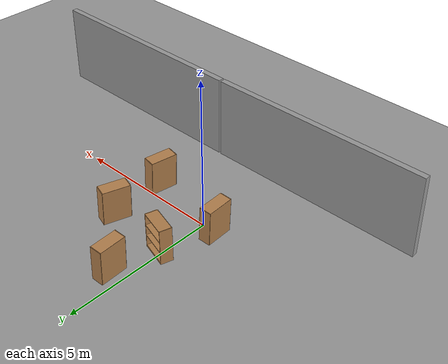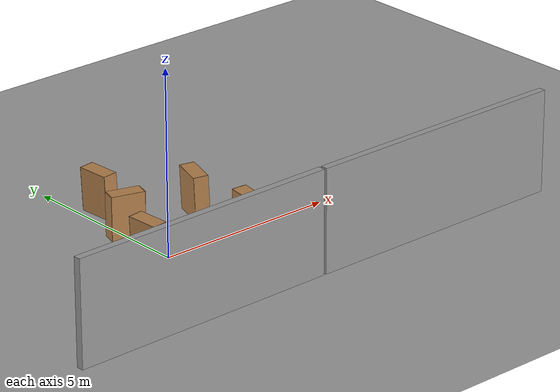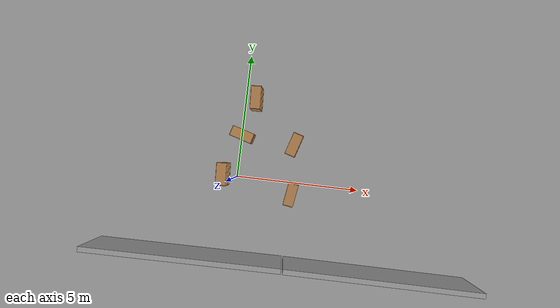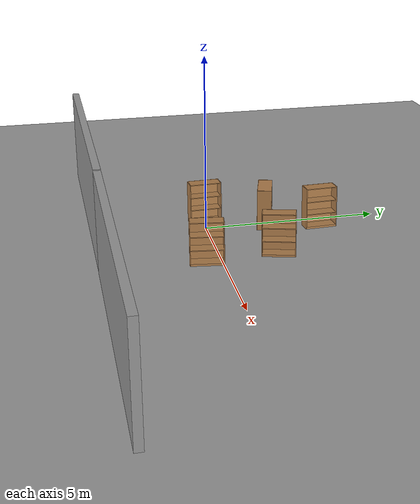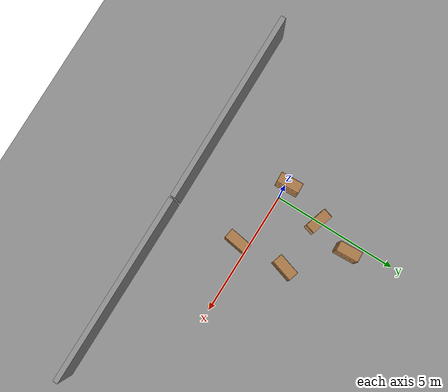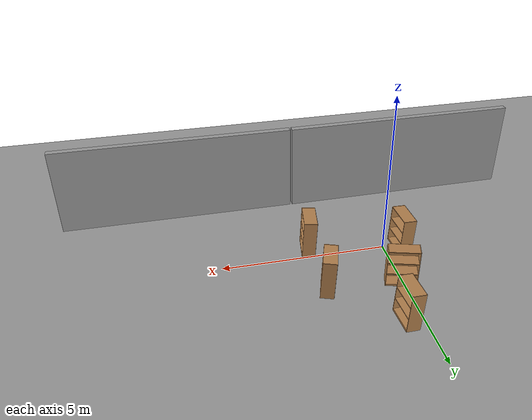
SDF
<sdf version="1.6">
 <world name="default">
  <light name="sun" type="directional">
   <cast_shadows>0</cast_shadows>
   <pose>0 0 10 0 -0 0</pose>
   <diffuse>0.8 0.8 0.8 1</diffuse>
   <specular>0.2 0.2 0.2 1</specular>
   <attenuation>
    <range>1000</range>
    <constant>0.9</constant>
    <linear>0.01</linear>
    <quadratic>0.001</quadratic>
   </attenuation>
   <direction>0.5 0.1 -0.9</direction>
  </light>
  <scene><ambient>0.4 0.4 0.4 1</ambient><background>0.7 0.7 0.7 1</background><shadows>0</shadows></scene>
  <physics name="default_physics" default="0" type="ode">
   <max_step_size>0.01</max_step_size>
   <real_time_factor>1</real_time_factor>
   <real_time_update_rate>100</real_time_update_rate>
  </physics>
  <model name="bookshelf">
   <static>1</static>
   <link name="link">
    <inertial><mass>1</mass></inertial>
    <collision name="back">
     <pose>0 0.005 0.6 0 -0 0</pose>
     <geometry><box><size>0.9 0.01 1.2</size></box></geometry>
    </collision>
    <visual name="visual1">
     <pose>0 0.005 0.6 0 -0 0</pose>
     <geometry><box><size>0.9 0.01 1.2</size></box></geometry>
     <material>
      <script><uri>file://media/materials/scripts/gazebo.material</uri><name>Gazebo/Wood</name></script>
     </material>
    </visual>
    <collision name="left_side">
     <pose>0.45 -0.195 0.6 0 -0 0</pose>
     <geometry><box><size>0.02 0.4 1.2</size></box></geometry>
    </collision>
    <visual name="visual2">
     <pose>0.45 -0.195 0.6 0 -0 0</pose>
     <geometry><box><size>0.02 0.4 1.2</size></box></geometry>
     <material>
      <script><uri>file://media/materials/scripts/gazebo.material</uri><name>Gazebo/Wood</name></script>
     </material>
    </visual>
    <collision name="right_side">
     <pose>-0.45 -0.195 0.6 0 -0 0</pose>
     <geometry><box><size>0.02 0.4 1.2</size></box></geometry>
    </collision>
    <visual name="visual3">
     <pose>-0.45 -0.195 0.6 0 -0 0</pose>
     <geometry><box><size>0.02 0.4 1.2</size></box></geometry>
     <material>
      <script><uri>file://media/materials/scripts/gazebo.material</uri><name>Gazebo/Wood</name></script>
     </material>
    </visual>
    <collision name="bottom">
     <pose>0 -0.195 0.03 0 -0 0</pose>
     <geometry><box><size>0.88 0.4 0.06</size></box></geometry>
    </collision>
    <visual name="visual4">
     <pose>0 -0.195 0.03 0 -0 0</pose>
     <geometry><box><size>0.88 0.4 0.06</size></box></geometry>
     <material>
      <script><uri>file://media/materials/scripts/gazebo.material</uri><name>Gazebo/Wood</name></script>
     </material>
    </visual>
    <collision name="top">
     <pose>0 -0.195 1.19 0 -0 0</pose>
     <geometry><box><size>0.88 0.4 0.02</size></box></geometry>
    </collision>
    <visual name="visual5">
     <pose>0 -0.195 1.19 0 -0 0</pose>
     <geometry><box><size>0.88 0.4 0.02</size></box></geometry>
     <material>
      <script><uri>file://media/materials/scripts/gazebo.material</uri><name>Gazebo/Wood</name></script>
     </material>
    </visual>
    <collision name="low_shelf">
     <pose>0 -0.195 0.43 0 -0 0</pose>
     <geometry><box><size>0.88 0.4 0.02</size></box></geometry>
    </collision>
    <visual name="visual6">
     <pose>0 -0.195 0.43 0 -0 0</pose>
     <geometry><box><size>0.88 0.4 0.02</size></box></geometry>
     <material>
      <script><uri>file://media/materials/scripts/gazebo.material</uri><name>Gazebo/Wood</name></script>
     </material>
    </visual>
    <collision name="high_shelf">
     <pose>0 -0.195 0.8 0 -0 0</pose>
     <geometry><box><size>0.88 0.4 0.02</size></box></geometry>
    </collision>
    <visual name="visual7">
     <pose>0 -0.195 0.8 0 -0 0</pose>
     <geometry><box><size>0.88 0.4 0.02</size></box></geometry>
     <material>
      <script><uri>file://media/materials/scripts/gazebo.material</uri><name>Gazebo/Wood</name></script>
     </material>
    </visual>
    <velocity_decay><linear>0</linear><angular>0</angular></velocity_decay>
   </link>
   <pose>0 1.53026 0 0 -0 2.85314</pose>
  </model>
  <model name="ground_plane_0">
   <static>1</static>
   <link name="link">
    <collision name="collision">
     <geometry><plane><normal>0 0 1</normal><size>100 100</size></plane></geometry>
     <surface><friction><ode><mu>100</mu><mu2>50</mu2></ode></friction></surface>
    </collision>
    <visual name="visual">
     <cast_shadows>0</cast_shadows>
     <geometry><plane><normal>0 0 1</normal><size>100 100</size></plane></geometry>
     <material>
      <script><uri>file://media/materials/scripts/gazebo.material</uri><name>Gazebo/Grey</name></script>
     </material>
    </visual>
    <velocity_decay><linear>0</linear><angular>0</angular></velocity_decay>
   </link>
   <pose>0.497681 0 0 0 -0 0</pose>
  </model>
  <gravity>0 0 -9.8</gravity>
  <magnetic_field>6e-06 2.3e-05 -4.2e-05</magnetic_field>
  <atmosphere type="adiabatic"/>
  <spherical_coordinates>
   <surface_model>EARTH_WGS84</surface_model>
   <latitude_deg>0</latitude_deg>
   <longitude_deg>0</longitude_deg>
   <elevation>0</elevation>
   <heading_deg>0</heading_deg>
  </spherical_coordinates>
  <model name="bookshelf_1">
   <static>1</static>
   <link name="link">
    <inertial><mass>1</mass></inertial>
    <collision name="back">
     <pose>0 0.005 0.6 0 -0 0</pose>
     <geometry><box><size>0.9 0.01 1.2</size></box></geometry>
    </collision>
    <visual name="visual1">
     <pose>0 0.005 0.6 0 -0 0</pose>
     <geometry><box><size>0.9 0.01 1.2</size></box></geometry>
     <material>
      <script><uri>file://media/materials/scripts/gazebo.material</uri><name>Gazebo/Wood</name></script>
     </material>
    </visual>
    <collision name="left_side">
     <pose>0.45 -0.195 0.6 0 -0 0</pose>
     <geometry><box><size>0.02 0.4 1.2</size></box></geometry>
    </collision>
    <visual name="visual2">
     <pose>0.45 -0.195 0.6 0 -0 0</pose>
     <geometry><box><size>0.02 0.4 1.2</size></box></geometry>
     <material>
      <script><uri>file://media/materials/scripts/gazebo.material</uri><name>Gazebo/Wood</name></script>
     </material>
    </visual>
    <collision name="right_side">
     <pose>-0.45 -0.195 0.6 0 -0 0</pose>
     <geometry><box><size>0.02 0.4 1.2</size></box></geometry>
    </collision>
    <visual name="visual3">
     <pose>-0.45 -0.195 0.6 0 -0 0</pose>
     <geometry><box><size>0.02 0.4 1.2</size></box></geometry>
     <material>
      <script><uri>file://media/materials/scripts/gazebo.material</uri><name>Gazebo/Wood</name></script>
     </material>
    </visual>
    <collision name="bottom">
     <pose>0 -0.195 0.03 0 -0 0</pose>
     <geometry><box><size>0.88 0.4 0.06</size></box></geometry>
    </collision>
    <visual name="visual4">
     <pose>0 -0.195 0.03 0 -0 0</pose>
     <geometry><box><size>0.88 0.4 0.06</size></box></geometry>
     <material>
      <script><uri>file://media/materials/scripts/gazebo.material</uri><name>Gazebo/Wood</name></script>
     </material>
    </visual>
    <collision name="top">
     <pose>0 -0.195 1.19 0 -0 0</pose>
     <geometry><box><size>0.88 0.4 0.02</size></box></geometry>
    </collision>
    <visual name="visual5">
     <pose>0 -0.195 1.19 0 -0 0</pose>
     <geometry><box><size>0.88 0.4 0.02</size></box></geometry>
     <material>
      <script><uri>file://media/materials/scripts/gazebo.material</uri><name>Gazebo/Wood</name></script>
     </material>
    </visual>
    <collision name="low_shelf">
     <pose>0 -0.195 0.43 0 -0 0</pose>
     <geometry><box><size>0.88 0.4 0.02</size></box></geometry>
    </collision>
    <visual name="visual6">
     <pose>0 -0.195 0.43 0 -0 0</pose>
     <geometry><box><size>0.88 0.4 0.02</size></box></geometry>
     <material>
      <script><uri>file://media/materials/scripts/gazebo.material</uri><name>Gazebo/Wood</name></script>
     </material>
    </visual>
    <collision name="high_shelf">
     <pose>0 -0.195 0.8 0 -0 0</pose>
     <geometry><box><size>0.88 0.4 0.02</size></box></geometry>
    </collision>
    <visual name="visual7">
     <pose>0 -0.195 0.8 0 -0 0</pose>
     <geometry><box><size>0.88 0.4 0.02</size></box></geometry>
     <material>
      <script><uri>file://media/materials/scripts/gazebo.material</uri><name>Gazebo/Wood</name></script>
     </material>
    </visual>
    <velocity_decay><linear>0</linear><angular>0</angular></velocity_decay>
   </link>
   <pose>-0.720055 0.058595 -0.006533 -0.048058 0.002164 1.61576</pose>
  </model>
  <model name="bookshelf_2">
   <static>1</static>
   <link name="link">
    <inertial><mass>1</mass></inertial>
    <collision name="back">
     <pose>0 0.005 0.6 0 -0 0</pose>
     <geometry><box><size>0.9 0.01 1.2</size></box></geometry>
    </collision>
    <visual name="visual1">
     <pose>0 0.005 0.6 0 -0 0</pose>
     <geometry><box><size>0.9 0.01 1.2</size></box></geometry>
     <material>
      <script><uri>file://media/materials/scripts/gazebo.material</uri><name>Gazebo/Wood</name></script>
     </material>
    </visual>
    <collision name="left_side">
     <pose>0.45 -0.195 0.6 0 -0 0</pose>
     <geometry><box><size>0.02 0.4 1.2</size></box></geometry>
    </collision>
    <visual name="visual2">
     <pose>0.45 -0.195 0.6 0 -0 0</pose>
     <geometry><box><size>0.02 0.4 1.2</size></box></geometry>
     <material>
      <script><uri>file://media/materials/scripts/gazebo.material</uri><name>Gazebo/Wood</name></script>
     </material>
    </visual>
    <collision name="right_side">
     <pose>-0.45 -0.195 0.6 0 -0 0</pose>
     <geometry><box><size>0.02 0.4 1.2</size></box></geometry>
    </collision>
    <visual name="visual3">
     <pose>-0.45 -0.195 0.6 0 -0 0</pose>
     <geometry><box><size>0.02 0.4 1.2</size></box></geometry>
     <material>
      <script><uri>file://media/materials/scripts/gazebo.material</uri><name>Gazebo/Wood</name></script>
     </material>
    </visual>
    <collision name="bottom">
     <pose>0 -0.195 0.03 0 -0 0</pose>
     <geometry><box><size>0.88 0.4 0.06</size></box></geometry>
    </collision>
    <visual name="visual4">
     <pose>0 -0.195 0.03 0 -0 0</pose>
     <geometry><box><size>0.88 0.4 0.06</size></box></geometry>
     <material>
      <script><uri>file://media/materials/scripts/gazebo.material</uri><name>Gazebo/Wood</name></script>
     </material>
    </visual>
    <collision name="top">
     <pose>0 -0.195 1.19 0 -0 0</pose>
     <geometry><box><size>0.88 0.4 0.02</size></box></geometry>
    </collision>
    <visual name="visual5">
     <pose>0 -0.195 1.19 0 -0 0</pose>
     <geometry><box><size>0.88 0.4 0.02</size></box></geometry>
     <material>
      <script><uri>file://media/materials/scripts/gazebo.material</uri><name>Gazebo/Wood</name></script>
     </material>
    </visual>
    <collision name="low_shelf">
     <pose>0 -0.195 0.43 0 -0 0</pose>
     <geometry><box><size>0.88 0.4 0.02</size></box></geometry>
    </collision>
    <visual name="visual6">
     <pose>0 -0.195 0.43 0 -0 0</pose>
     <geometry><box><size>0.88 0.4 0.02</size></box></geometry>
     <material>
      <script><uri>file://media/materials/scripts/gazebo.material</uri><name>Gazebo/Wood</name></script>
     </material>
    </visual>
    <collision name="high_shelf">
     <pose>0 -0.195 0.8 0 -0 0</pose>
     <geometry><box><size>0.88 0.4 0.02</size></box></geometry>
    </collision>
    <visual name="visual7">
     <pose>0 -0.195 0.8 0 -0 0</pose>
     <geometry><box><size>0.88 0.4 0.02</size></box></geometry>
     <material>
      <script><uri>file://media/materials/scripts/gazebo.material</uri><name>Gazebo/Wood</name></script>
     </material>
    </visual>
    <velocity_decay><linear>0</linear><angular>0</angular></velocity_decay>
   </link>
   <pose>2.01609 1.61574 0.019312 -0.045984 -0.014137 1.27273</pose>
  </model>
  <model name="bookshelf_3">
   <static>1</static>
   <link name="link">
    <inertial><mass>1</mass></inertial>
    <collision name="back">
     <pose>0 0.005 0.6 0 -0 0</pose>
     <geometry><box><size>0.9 0.01 1.2</size></box></geometry>
    </collision>
    <visual name="visual1">
     <pose>0 0.005 0.6 0 -0 0</pose>
     <geometry><box><size>0.9 0.01 1.2</size></box></geometry>
     <material>
      <script><uri>file://media/materials/scripts/gazebo.material</uri><name>Gazebo/Wood</name></script>
     </material>
    </visual>
    <collision name="left_side">
     <pose>0.45 -0.195 0.6 0 -0 0</pose>
     <geometry><box><size>0.02 0.4 1.2</size></box></geometry>
    </collision>
    <visual name="visual2">
     <pose>0.45 -0.195 0.6 0 -0 0</pose>
     <geometry><box><size>0.02 0.4 1.2</size></box></geometry>
     <material>
      <script><uri>file://media/materials/scripts/gazebo.material</uri><name>Gazebo/Wood</name></script>
     </material>
    </visual>
    <collision name="right_side">
     <pose>-0.45 -0.195 0.6 0 -0 0</pose>
     <geometry><box><size>0.02 0.4 1.2</size></box></geometry>
    </collision>
    <visual name="visual3">
     <pose>-0.45 -0.195 0.6 0 -0 0</pose>
     <geometry><box><size>0.02 0.4 1.2</size></box></geometry>
     <material>
      <script><uri>file://media/materials/scripts/gazebo.material</uri><name>Gazebo/Wood</name></script>
     </material>
    </visual>
    <collision name="bottom">
     <pose>0 -0.195 0.03 0 -0 0</pose>
     <geometry><box><size>0.88 0.4 0.06</size></box></geometry>
    </collision>
    <visual name="visual4">
     <pose>0 -0.195 0.03 0 -0 0</pose>
     <geometry><box><size>0.88 0.4 0.06</size></box></geometry>
     <material>
      <script><uri>file://media/materials/scripts/gazebo.material</uri><name>Gazebo/Wood</name></script>
     </material>
    </visual>
    <collision name="top">
     <pose>0 -0.195 1.19 0 -0 0</pose>
     <geometry><box><size>0.88 0.4 0.02</size></box></geometry>
    </collision>
    <visual name="visual5">
     <pose>0 -0.195 1.19 0 -0 0</pose>
     <geometry><box><size>0.88 0.4 0.02</size></box></geometry>
     <material>
      <script><uri>file://media/materials/scripts/gazebo.material</uri><name>Gazebo/Wood</name></script>
     </material>
    </visual>
    <collision name="low_shelf">
     <pose>0 -0.195 0.43 0 -0 0</pose>
     <geometry><box><size>0.88 0.4 0.02</size></box></geometry>
    </collision>
    <visual name="visual6">
     <pose>0 -0.195 0.43 0 -0 0</pose>
     <geometry><box><size>0.88 0.4 0.02</size></box></geometry>
     <material>
      <script><uri>file://media/materials/scripts/gazebo.material</uri><name>Gazebo/Wood</name></script>
     </material>
    </visual>
    <collision name="high_shelf">
     <pose>0 -0.195 0.8 0 -0 0</pose>
     <geometry><box><size>0.88 0.4 0.02</size></box></geometry>
    </collision>
    <visual name="visual7">
     <pose>0 -0.195 0.8 0 -0 0</pose>
     <geometry><box><size>0.88 0.4 0.02</size></box></geometry>
     <material>
      <script><uri>file://media/materials/scripts/gazebo.material</uri><name>Gazebo/Wood</name></script>
     </material>
    </visual>
    <velocity_decay><linear>0</linear><angular>0</angular></velocity_decay>
   </link>
   <pose>2.11071 -0.392662 0.011019 -0.047535 -0.007397 1.41653</pose>
  </model>
  <model name="grey_wall_1">
   <static>1</static>
   <link name="link">
    <pose>0 0 1.4 0 -0 0</pose>
    <collision name="collision"><geometry><box><size>7.5 0.2 2.8</size></box></geometry></collision>
    <visual name="visual">
     <cast_shadows>0</cast_shadows>
     <geometry><box><size>7.5 0.2 2.8</size></box></geometry>
     <material>
      <script>
       <uri>model://grey_wall/materials/scripts</uri>
       <uri>model://grey_wall/materials/textures</uri>
       <name>vrc/grey_wall</name>
      </script>
     </material>
    </visual>
   </link>
   <pose>6.00331 -3.15825 0 0 -0 0</pose>
  </model>
  <model name="grey_wall_2">
   <static>1</static>
   <link name="link">
    <pose>0 0 1.4 0 -0 0</pose>
    <collision name="collision"><geometry><box><size>7.5 0.2 2.8</size></box></geometry></collision>
    <visual name="visual">
     <cast_shadows>0</cast_shadows>
     <geometry><box><size>7.5 0.2 2.8</size></box></geometry>
     <material>
      <script>
       <uri>model://grey_wall/materials/scripts</uri>
       <uri>model://grey_wall/materials/textures</uri>
       <name>vrc/grey_wall</name>
      </script>
     </material>
    </visual>
   </link>
   <pose>-1.56203 -3.18626 0 0 -0 0.008661</pose>
  </model>
  <model name="bookshelf_4">
   <static>1</static>
   <link name="link">
    <inertial><mass>1</mass></inertial>
    <collision name="back">
     <pose>0 0.005 0.6 0 -0 0</pose>
     <geometry><box><size>0.9 0.01 1.2</size></box></geometry>
    </collision>
    <visual name="visual1">
     <pose>0 0.005 0.6 0 -0 0</pose>
     <geometry><box><size>0.9 0.01 1.2</size></box></geometry>
     <material>
      <script><uri>file://media/materials/scripts/gazebo.material</uri><name>Gazebo/Wood</name></script>
     </material>
    </visual>
    <collision name="left_side">
     <pose>0.45 -0.195 0.6 0 -0 0</pose>
     <geometry><box><size>0.02 0.4 1.2</size></box></geometry>
    </collision>
    <visual name="visual2">
     <pose>0.45 -0.195 0.6 0 -0 0</pose>
     <geometry><box><size>0.02 0.4 1.2</size></box></geometry>
     <material>
      <script><uri>file://media/materials/scripts/gazebo.material</uri><name>Gazebo/Wood</name></script>
     </material>
    </visual>
    <collision name="right_side">
     <pose>-0.45 -0.195 0.6 0 -0 0</pose>
     <geometry><box><size>0.02 0.4 1.2</size></box></geometry>
    </collision>
    <visual name="visual3">
     <pose>-0.45 -0.195 0.6 0 -0 0</pose>
     <geometry><box><size>0.02 0.4 1.2</size></box></geometry>
     <material>
      <script><uri>file://media/materials/scripts/gazebo.material</uri><name>Gazebo/Wood</name></script>
     </material>
    </visual>
    <collision name="bottom">
     <pose>0 -0.195 0.03 0 -0 0</pose>
     <geometry><box><size>0.88 0.4 0.06</size></box></geometry>
    </collision>
    <visual name="visual4">
     <pose>0 -0.195 0.03 0 -0 0</pose>
     <geometry><box><size>0.88 0.4 0.06</size></box></geometry>
     <material>
      <script><uri>file://media/materials/scripts/gazebo.material</uri><name>Gazebo/Wood</name></script>
     </material>
    </visual>
    <collision name="top">
     <pose>0 -0.195 1.19 0 -0 0</pose>
     <geometry><box><size>0.88 0.4 0.02</size></box></geometry>
    </collision>
    <visual name="visual5">
     <pose>0 -0.195 1.19 0 -0 0</pose>
     <geometry><box><size>0.88 0.4 0.02</size></box></geometry>
     <material>
      <script><uri>file://media/materials/scripts/gazebo.material</uri><name>Gazebo/Wood</name></script>
     </material>
    </visual>
    <collision name="low_shelf">
     <pose>0 -0.195 0.43 0 -0 0</pose>
     <geometry><box><size>0.88 0.4 0.02</size></box></geometry>
    </collision>
    <visual name="visual6">
     <pose>0 -0.195 0.43 0 -0 0</pose>
     <geometry><box><size>0.88 0.4 0.02</size></box></geometry>
     <material>
      <script><uri>file://media/materials/scripts/gazebo.material</uri><name>Gazebo/Wood</name></script>
     </material>
    </visual>
    <collision name="high_shelf">
     <pose>0 -0.195 0.8 0 -0 0</pose>
     <geometry><box><size>0.88 0.4 0.02</size></box></geometry>
    </collision>
    <visual name="visual7">
     <pose>0 -0.195 0.8 0 -0 0</pose>
     <geometry><box><size>0.88 0.4 0.02</size></box></geometry>
     <material>
      <script><uri>file://media/materials/scripts/gazebo.material</uri><name>Gazebo/Wood</name></script>
     </material>
    </visual>
    <velocity_decay><linear>0</linear><angular>0</angular></velocity_decay>
   </link>
   <pose>0.278361 3.23077 -0.021227 -0.048058 0.002164 1.61576</pose>
  </model>
 </world>
</sdf>
